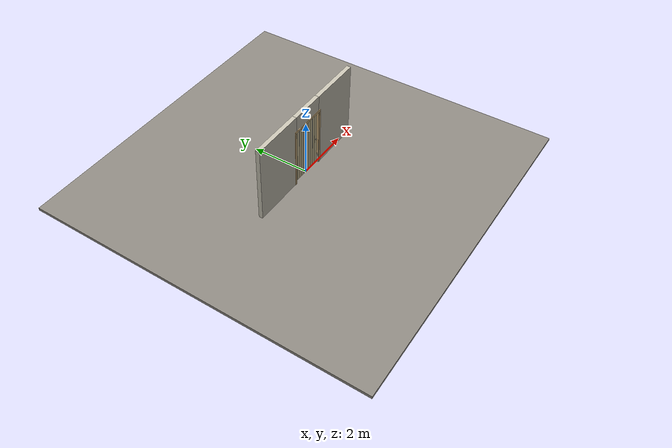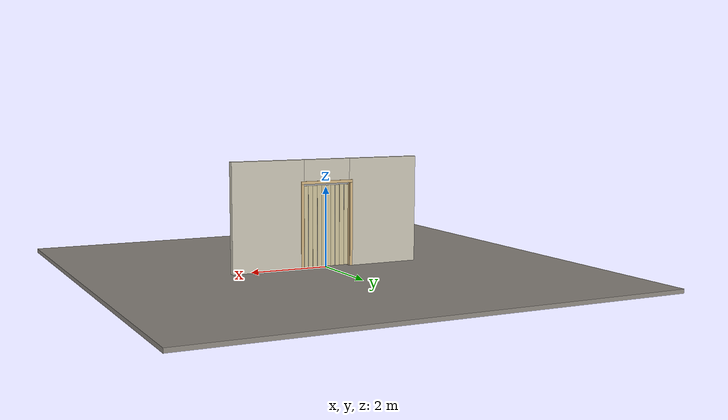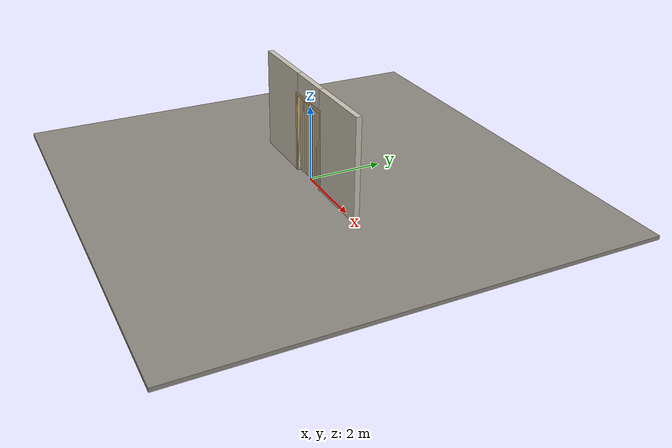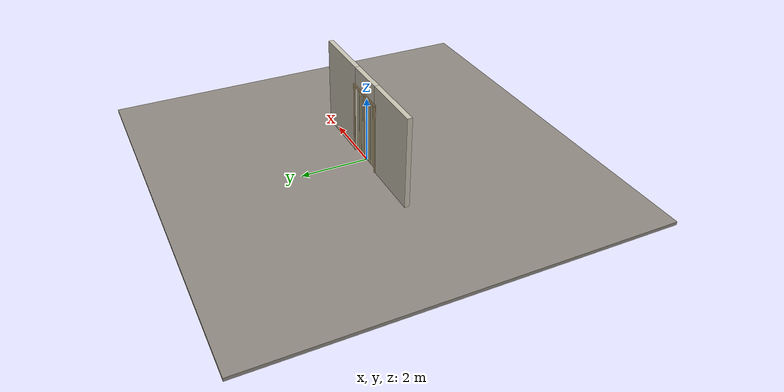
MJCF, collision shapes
<?xml version="1.0" ?>
<mujoco model="db0249_accordion_full">
  <compiler angle="radian" meshdir="../../hardware" texturedir="../../textures" autolimits="true" inertiafromgeom="false"/>
  <option timestep="0.002" integrator="implicitfast" cone="elliptic" impratio="10" noslip_iterations="3">
    <flag multiccd="enable"/>
  </option>
  <size memory="16M"/>
  <default>
    <geom condim="4" solref="0.005 1" solimp="0.95 0.99 0.001"/>
    <joint solreflimit="0.005 1" solimplimit="0.95 0.99 0.001"/>
    <tendon solreflimit="0.005 1"/>
    <equality solref="0.002 1"/>
  </default>
  <visual>
    <headlight ambient="0.4 0.4 0.4" diffuse="0.7 0.7 0.7" specular="0.2 0.2 0.2"/>
    <quality shadowsize="4096"/>
    <map znear="0.01" zfar="60"/>
  </visual>
  <asset>
    <mesh name="knob_13f7a2a65f" file="knob_13f7a2a65f.obj"/>
    <material name="mat_floor" rgba="0.55 0.53 0.5 1" specular="0.2" shininess="0.15" reflectance="0"/>
    <material name="mat_wall" rgba="0.78 0.76 0.7 1" specular="0.2" shininess="0.1" reflectance="0"/>
    <material name="mat_frame" rgba="0.82 0.7 0.5 1" specular="0.2" shininess="0.45" reflectance="0"/>
    <material name="mat_track" rgba="0.8 0.81 0.83 1" specular="0.8" shininess="0.6" reflectance="0.4"/>
    <material name="mat_hinge" rgba="0.65 0.66 0.68 1" specular="0.74" shininess="0.5" reflectance="0.36"/>
    <material name="mat_panel_0_0" rgba="0.8 0.75 0.6 1" specular="0.2" shininess="0.05" reflectance="0"/>
    <material name="mat_panel_0_1" rgba="0.8 0.75 0.6 1" specular="0.2" shininess="0.05" reflectance="0"/>
    <material name="mat_panel_0_2" rgba="0.8 0.75 0.6 1" specular="0.2" shininess="0.05" reflectance="0"/>
    <material name="mat_panel_0_3" rgba="0.8 0.75 0.6 1" specular="0.2" shininess="0.05" reflectance="0"/>
    <material name="mat_panel_0_4" rgba="0.8 0.75 0.6 1" specular="0.2" shininess="0.05" reflectance="0"/>
    <material name="mat_panel_0_5" rgba="0.8 0.75 0.6 1" specular="0.2" shininess="0.05" reflectance="0"/>
    <material name="mat_panel_0_6" rgba="0.8 0.75 0.6 1" specular="0.2" shininess="0.05" reflectance="0"/>
    <material name="mat_panel_0_7" rgba="0.8 0.75 0.6 1" specular="0.2" shininess="0.05" reflectance="0"/>
    <material name="mat_panel_0_8" rgba="0.8 0.75 0.6 1" specular="0.2" shininess="0.05" reflectance="0"/>
    <material name="mat_panel_0_9" rgba="0.8 0.75 0.6 1" specular="0.2" shininess="0.05" reflectance="0"/>
    <material name="mat_op_nickel_satin" rgba="0.72 0.7 0.66 1" specular="0.8" shininess="0.65" reflectance="0.4"/>
    <texture name="skybox" type="skybox" builtin="gradient" rgb1="0.6 0.7 0.85" rgb2="0.9 0.92 0.95" width="256" height="256"/>
  </asset>
  <worldbody>
    <light name="sun" pos="1.5 -2.5 4" dir="-0.3 0.5 -0.8" directional="true" diffuse="0.8 0.8 0.8" specular="0.3 0.3 0.3" castshadow="true"/>
    <light name="fill" pos="-1.5 2.5 3" dir="0.3 -0.5 -0.7" directional="true" diffuse="0.35 0.35 0.4" castshadow="false"/>
    <camera name="robot_view" pos="0 -2.581563 1.766338" xyaxes="1 0 0 0 0.26963 0.962964" fovy="52"/>
    <camera name="far_view" pos="0 2.581563 1.766338" xyaxes="-1 0 0 0 -0.26963 0.962964" fovy="52"/>
    <camera name="iso" pos="1.961988 -2.168513 2.179388" xyaxes="0.741536 0.670913 0 -0.242917 0.268487 0.932151" fovy="46"/>
    <camera name="detail_handle" pos="0.738029 -0.836 1.28" xyaxes="0.97561 0.219512 0 -0.070934 0.315262 0.94635" fovy="38"/>
    <geom name="floor" type="box" size="6 6 0.05" pos="0 0 -0.05" material="mat_floor" group="0" contype="1" conaffinity="1" friction="0.8 0.005 0.0001" density="2400"/>
    <geom name="wall_left" type="box" size="0.94175 0.0725 1.35" pos="-1.55825 0 1.35" material="mat_wall" group="0" contype="1" conaffinity="1" friction="0.6 0.005 0.0001" density="800"/>
    <geom name="wall_right" type="box" size="0.94175 0.0725 1.35" pos="1.55825 0 1.35" material="mat_wall" group="0" contype="1" conaffinity="1" friction="0.6 0.005 0.0001" density="800"/>
    <geom name="wall_header" type="box" size="0.6165 0.0725 0.3065" pos="0 0 2.3935" material="mat_wall" group="0" contype="1" conaffinity="1" friction="0.6 0.005 0.0001" density="800"/>
    <geom name="jamb_hinge" type="box" size="0.0095 0.0725 1.0435" pos="-0.626 0 1.0435" material="mat_frame" group="0" contype="1" conaffinity="1" friction="0.6 0.005 0.0001" density="400"/>
    <geom name="jamb_strike" type="box" size="0.0095 0.0725 1.0435" pos="0.626 0 1.0435" material="mat_frame" group="0" contype="1" conaffinity="1" friction="0.6 0.005 0.0001" density="400"/>
    <geom name="stud_strike" type="box" size="0.015 0.0725 1.0435" pos="0.6505 0 1.0435" material="mat_wall" group="0" contype="1" conaffinity="1" friction="0.6 0.005 0.0001" density="500"/>
    <geom name="jamb_head" type="box" size="0.6505 0.0725 0.0095" pos="0.015 0 2.0965" material="mat_frame" group="0" contype="1" conaffinity="1" friction="0.6 0.005 0.0001" density="400"/>
    <geom name="head_stud" type="box" size="0.6505 0.0725 0.015" pos="0.015 0 2.121" material="mat_wall" group="0" contype="1" conaffinity="1" friction="0.6 0.005 0.0001" density="500"/>
    <geom name="casing_l_n" type="box" size="0.035 0.008 1.053" pos="-0.6655 -0.0805 1.0435" material="mat_frame" group="2" contype="0" conaffinity="0" density="400"/>
    <geom name="casing_r_n" type="box" size="0.035 0.008 1.053" pos="0.6655 -0.0805 1.0435" material="mat_frame" group="2" contype="0" conaffinity="0" density="400"/>
    <geom name="casing_h_n" type="box" size="0.7005 0.008 0.035" pos="0 -0.0805 2.136" material="mat_frame" group="2" contype="0" conaffinity="0" density="400"/>
    <geom name="casing_l_p" type="box" size="0.035 0.008 1.053" pos="-0.6655 0.0805 1.0435" material="mat_frame" group="2" contype="0" conaffinity="0" density="400"/>
    <geom name="casing_r_p" type="box" size="0.035 0.008 1.053" pos="0.6655 0.0805 1.0435" material="mat_frame" group="2" contype="0" conaffinity="0" density="400"/>
    <geom name="casing_h_p" type="box" size="0.7005 0.008 0.035" pos="0 0.0805 2.136" material="mat_frame" group="2" contype="0" conaffinity="0" density="400"/>
    <geom name="fold_track" type="box" size="0.6165 0.02 0.015" pos="0 0 2.072" material="mat_track" group="1" contype="0" conaffinity="0" density="2700"/>
    <site name="approach_point" pos="0 -1.5 0" quat="1 0 0 0" size="0.05" rgba="0.2 0.9 0.2 0.5" group="4"/>
    <site name="goal_point" pos="0 1.5 0" quat="1 0 0 0" size="0.05" rgba="0.2 0.9 0.2 0.5" group="4"/>
    <site name="door_plane_center" pos="0 0 1.0435" quat="1 0 0 0" size="0.02" rgba="0.2 0.9 0.2 0.5" group="4"/>
    <body name="panel_0_0" pos="-0.6165 0 0">
      <inertial pos="0.061999 0 1.054532" mass="2.596771" quat="0.500352 0.500352 0.499648 -0.499648" diaginertia="0.002875111 0.925281459 0.928093869"/>
      <joint name="panel_0_0_hinge" type="hinge" axis="0 0 -1" pos="0.035 0 0" limited="true" range="0 1.48353" damping="0.877991" frictionloss="6.642782" armature="0.02"/>
      <geom name="panel_0_0_slab" type="box" size="0.0575 0.006 1.016" pos="0.0625 0 1.036" material="mat_panel_0_0" group="0" contype="1" conaffinity="1" friction="0.4 0.005 0.0001" density="1"/>
      <geom name="panel_0_0_pivot_pin" type="cylinder" size="0.008 0.0105" pos="0.035 0 2.0525" material="mat_hinge" group="1" contype="0" conaffinity="0" density="7850"/>
      <body name="panel_0_1" pos="0.122 0 0">
        <inertial pos="0.000174 0.005983 1.036" mass="2.77886" quat="0.518419 -0.480876 0.518419 0.480876" diaginertia="0.000067084 0.937503285 0.937541989"/>
        <joint name="panel_0_1_hinge" type="hinge" axis="0 0 -1" pos="0 0.006 0" limited="true" range="-3.141593 0" damping="0.2" frictionloss="0.1" armature="0.005"/>
        <geom name="panel_0_1_slab" type="box" size="0.059 0.006 1.016" pos="0.061 0 1.036" material="mat_panel_0_1" group="0" contype="1" conaffinity="1" friction="0.4 0.005 0.0001" density="1"/>
        <geom name="panel_0_1_knuckle" type="cylinder" size="0.0045 1.006" pos="0 0.006 1.036" material="mat_hinge" group="1" contype="0" conaffinity="0" density="7850"/>
        <body name="panel_0_2" pos="0.122 0 0">
          <inertial pos="0.000174 -0.005983 1.036" mass="2.77886" quat="0.480876 -0.518419 0.480876 0.518419" diaginertia="0.000067084 0.937503285 0.937541989"/>
          <joint name="panel_0_2_hinge" type="hinge" axis="0 0 -1" pos="0 -0.006 0" limited="true" range="0 3.141593" damping="0.2" frictionloss="0.1" armature="0.005"/>
          <geom name="panel_0_2_slab" type="box" size="0.059 0.006 1.016" pos="0.061 0 1.036" material="mat_panel_0_2" group="0" contype="1" conaffinity="1" friction="0.4 0.005 0.0001" density="1"/>
          <geom name="panel_0_2_knuckle" type="cylinder" size="0.0045 1.006" pos="0 -0.006 1.036" material="mat_hinge" group="1" contype="0" conaffinity="0" density="7850"/>
          <body name="panel_0_3" pos="0.122 0 0">
            <inertial pos="0.000174 0.005983 1.036" mass="2.77886" quat="0.518419 -0.480876 0.518419 0.480876" diaginertia="0.000067084 0.937503285 0.937541989"/>
            <joint name="panel_0_3_hinge" type="hinge" axis="0 0 -1" pos="0 0.006 0" limited="true" range="-3.141593 0" damping="0.2" frictionloss="0.1" armature="0.005"/>
            <geom name="panel_0_3_slab" type="box" size="0.059 0.006 1.016" pos="0.061 0 1.036" material="mat_panel_0_3" group="0" contype="1" conaffinity="1" friction="0.4 0.005 0.0001" density="1"/>
            <geom name="panel_0_3_knuckle" type="cylinder" size="0.0045 1.006" pos="0 0.006 1.036" material="mat_hinge" group="1" contype="0" conaffinity="0" density="7850"/>
            <body name="panel_0_4" pos="0.122 0 0">
              <inertial pos="0.000174 -0.005983 1.036" mass="2.77886" quat="0.480876 -0.518419 0.480876 0.518419" diaginertia="0.000067084 0.937503285 0.937541989"/>
              <joint name="panel_0_4_hinge" type="hinge" axis="0 0 -1" pos="0 -0.006 0" limited="true" range="0 3.141593" damping="0.2" frictionloss="0.1" armature="0.005"/>
              <geom name="panel_0_4_slab" type="box" size="0.059 0.006 1.016" pos="0.061 0 1.036" material="mat_panel_0_4" group="0" contype="1" conaffinity="1" friction="0.4 0.005 0.0001" density="1"/>
              <geom name="panel_0_4_knuckle" type="cylinder" size="0.0045 1.006" pos="0 -0.006 1.036" material="mat_hinge" group="1" contype="0" conaffinity="0" density="7850"/>
              <body name="panel_0_5" pos="0.122 0 0">
                <inertial pos="0.000174 0.005983 1.036" mass="2.77886" quat="0.518419 -0.480876 0.518419 0.480876" diaginertia="0.000067084 0.937503285 0.937541989"/>
                <joint name="panel_0_5_hinge" type="hinge" axis="0 0 -1" pos="0 0.006 0" limited="true" range="-3.141593 0" damping="0.2" frictionloss="0.1" armature="0.005"/>
                <geom name="panel_0_5_slab" type="box" size="0.059 0.006 1.016" pos="0.061 0 1.036" material="mat_panel_0_5" group="0" contype="1" conaffinity="1" friction="0.4 0.005 0.0001" density="1"/>
                <geom name="panel_0_5_knuckle" type="cylinder" size="0.0045 1.006" pos="0 0.006 1.036" material="mat_hinge" group="1" contype="0" conaffinity="0" density="7850"/>
                <body name="panel_0_6" pos="0.122 0 0">
                  <inertial pos="0.000174 -0.005983 1.036" mass="2.77886" quat="0.480876 -0.518419 0.480876 0.518419" diaginertia="0.000067084 0.937503285 0.937541989"/>
                  <joint name="panel_0_6_hinge" type="hinge" axis="0 0 -1" pos="0 -0.006 0" limited="true" range="0 3.141593" damping="0.2" frictionloss="0.1" armature="0.005"/>
                  <geom name="panel_0_6_slab" type="box" size="0.059 0.006 1.016" pos="0.061 0 1.036" material="mat_panel_0_6" group="0" contype="1" conaffinity="1" friction="0.4 0.005 0.0001" density="1"/>
                  <geom name="panel_0_6_knuckle" type="cylinder" size="0.0045 1.006" pos="0 -0.006 1.036" material="mat_hinge" group="1" contype="0" conaffinity="0" density="7850"/>
                  <body name="panel_0_7" pos="0.122 0 0">
                    <inertial pos="0.000174 0.005983 1.036" mass="2.77886" quat="0.518419 -0.480876 0.518419 0.480876" diaginertia="0.000067084 0.937503285 0.937541989"/>
                    <joint name="panel_0_7_hinge" type="hinge" axis="0 0 -1" pos="0 0.006 0" limited="true" range="-3.141593 0" damping="0.2" frictionloss="0.1" armature="0.005"/>
                    <geom name="panel_0_7_slab" type="box" size="0.059 0.006 1.016" pos="0.061 0 1.036" material="mat_panel_0_7" group="0" contype="1" conaffinity="1" friction="0.4 0.005 0.0001" density="1"/>
                    <geom name="panel_0_7_knuckle" type="cylinder" size="0.0045 1.006" pos="0 0.006 1.036" material="mat_hinge" group="1" contype="0" conaffinity="0" density="7850"/>
                    <body name="panel_0_8" pos="0.122 0 0">
                      <inertial pos="0.000174 -0.005983 1.036" mass="2.77886" quat="0.480876 -0.518419 0.480876 0.518419" diaginertia="0.000067084 0.937503285 0.937541989"/>
                      <joint name="panel_0_8_hinge" type="hinge" axis="0 0 -1" pos="0 -0.006 0" limited="true" range="0 3.141593" damping="0.2" frictionloss="0.1" armature="0.005"/>
                      <geom name="panel_0_8_slab" type="box" size="0.059 0.006 1.016" pos="0.061 0 1.036" material="mat_panel_0_8" group="0" contype="1" conaffinity="1" friction="0.4 0.005 0.0001" density="1"/>
                      <geom name="panel_0_8_knuckle" type="cylinder" size="0.0045 1.006" pos="0 -0.006 1.036" material="mat_hinge" group="1" contype="0" conaffinity="0" density="7850"/>
                      <body name="panel_0_9" pos="0.122 0 0">
                        <inertial pos="0.009921 0.002108 1.031413" mass="2.971433" quat="0.585205 -0.397561 0.584761 0.396906" diaginertia="0.002378379 0.875240295 0.877484787"/>
                        <joint name="panel_0_9_hinge" type="hinge" axis="0 0 -1" pos="0 0.006 0" limited="true" range="-3.141593 0" damping="0.2" frictionloss="0.1" armature="0.005"/>
                        <geom name="panel_0_9_slab" type="box" size="0.062265 0.006 1.016" pos="0.064265 0 1.036" material="mat_panel_0_9" group="0" contype="1" conaffinity="1" friction="0.4 0.005 0.0001" density="1"/>
                        <geom name="panel_0_9_knuckle" type="cylinder" size="0.0045 1.006" pos="0 0.006 1.036" material="mat_hinge" group="1" contype="0" conaffinity="0" density="7850"/>
                        <geom name="panel_0_9_knob" type="mesh" mesh="knob_13f7a2a65f" pos="0.076529 -0.006 1" quat="0.707107 0.707107 0 0" material="mat_op_nickel_satin" group="1" contype="0" conaffinity="0" density="3000"/>
                        <geom name="panel_0_9_knob_col" type="sphere" size="0.016" pos="0.076529 -0.036 1" material="mat_op_nickel_satin" group="0" contype="1" conaffinity="1" friction="0.6 0.005 0.0001" density="3000"/>
                        <geom name="panel_0_9_knob_rose" type="cylinder" size="0.022 0.005" pos="0.076529 -0.011 1" quat="0.707107 -0.707107 0 0" material="mat_op_nickel_satin" group="1" contype="0" conaffinity="0" density="3000"/>
                        <site name="panel_0_9_grip" pos="0.076529 -0.036 1" quat="1 0 0 0" size="0.012" rgba="0.2 0.9 0.2 0.5" group="4"/>
                      </body>
                    </body>
                  </body>
                </body>
              </body>
            </body>
          </body>
        </body>
      </body>
    </body>
  </worldbody>
  <equality>
    <joint name="panel_0_1_couple" joint1="panel_0_1_hinge" joint2="panel_0_0_hinge" polycoef="0 -2 0 0 0" active="true"/>
    <joint name="panel_0_2_couple" joint1="panel_0_2_hinge" joint2="panel_0_0_hinge" polycoef="0 2 0 0 0" active="true"/>
    <joint name="panel_0_3_couple" joint1="panel_0_3_hinge" joint2="panel_0_0_hinge" polycoef="0 -2 0 0 0" active="true"/>
    <joint name="panel_0_4_couple" joint1="panel_0_4_hinge" joint2="panel_0_0_hinge" polycoef="0 2 0 0 0" active="true"/>
    <joint name="panel_0_5_couple" joint1="panel_0_5_hinge" joint2="panel_0_0_hinge" polycoef="0 -2 0 0 0" active="true"/>
    <joint name="panel_0_6_couple" joint1="panel_0_6_hinge" joint2="panel_0_0_hinge" polycoef="0 2 0 0 0" active="true"/>
    <joint name="panel_0_7_couple" joint1="panel_0_7_hinge" joint2="panel_0_0_hinge" polycoef="0 -2 0 0 0" active="true"/>
    <joint name="panel_0_8_couple" joint1="panel_0_8_hinge" joint2="panel_0_0_hinge" polycoef="0 2 0 0 0" active="true"/>
    <joint name="panel_0_9_couple" joint1="panel_0_9_hinge" joint2="panel_0_0_hinge" polycoef="0 -2 0 0 0" active="true"/>
  </equality>
  <sensor>
    <jointpos name="panel_0_0_hinge_pos" joint="panel_0_0_hinge"/>
    <jointvel name="panel_0_0_hinge_vel" joint="panel_0_0_hinge"/>
    <jointpos name="panel_0_1_hinge_pos" joint="panel_0_1_hinge"/>
    <jointvel name="panel_0_1_hinge_vel" joint="panel_0_1_hinge"/>
    <jointpos name="panel_0_2_hinge_pos" joint="panel_0_2_hinge"/>
    <jointvel name="panel_0_2_hinge_vel" joint="panel_0_2_hinge"/>
    <jointpos name="panel_0_3_hinge_pos" joint="panel_0_3_hinge"/>
    <jointvel name="panel_0_3_hinge_vel" joint="panel_0_3_hinge"/>
    <jointpos name="panel_0_4_hinge_pos" joint="panel_0_4_hinge"/>
    <jointvel name="panel_0_4_hinge_vel" joint="panel_0_4_hinge"/>
    <jointpos name="panel_0_5_hinge_pos" joint="panel_0_5_hinge"/>
    <jointvel name="panel_0_5_hinge_vel" joint="panel_0_5_hinge"/>
    <jointpos name="panel_0_6_hinge_pos" joint="panel_0_6_hinge"/>
    <jointvel name="panel_0_6_hinge_vel" joint="panel_0_6_hinge"/>
    <jointpos name="panel_0_7_hinge_pos" joint="panel_0_7_hinge"/>
    <jointvel name="panel_0_7_hinge_vel" joint="panel_0_7_hinge"/>
    <jointpos name="panel_0_8_hinge_pos" joint="panel_0_8_hinge"/>
    <jointvel name="panel_0_8_hinge_vel" joint="panel_0_8_hinge"/>
    <jointpos name="panel_0_9_hinge_pos" joint="panel_0_9_hinge"/>
    <jointvel name="panel_0_9_hinge_vel" joint="panel_0_9_hinge"/>
  </sensor>
</mujoco>
